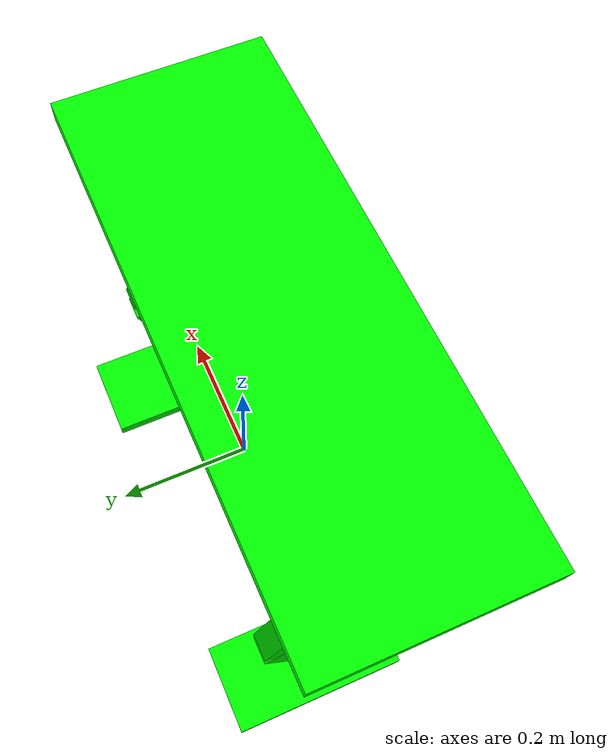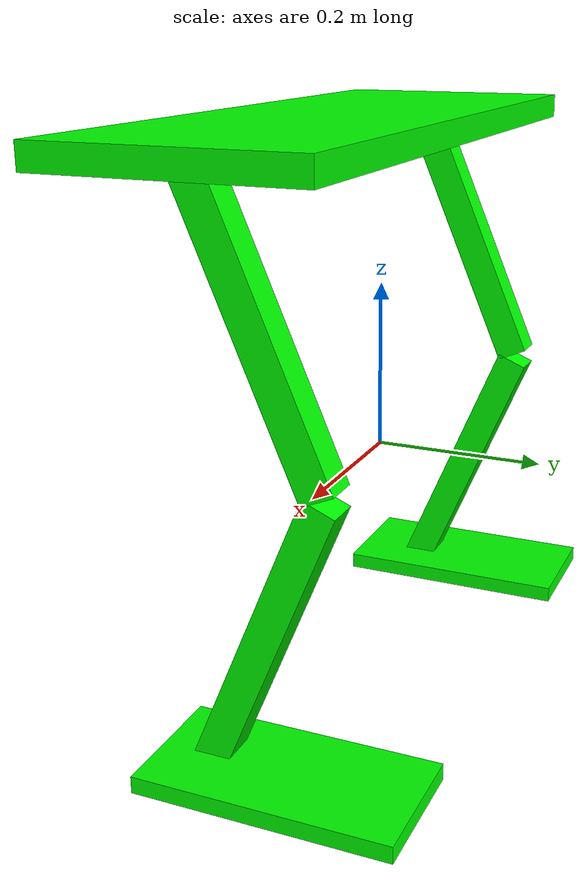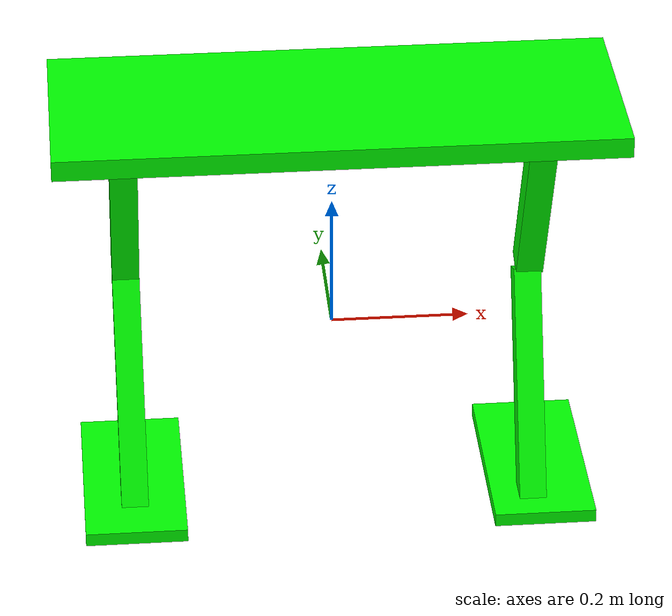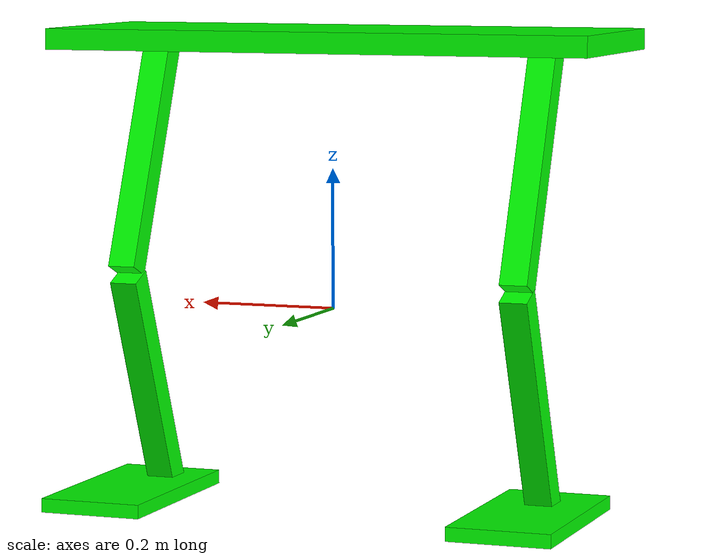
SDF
<?xml version='1.0'?>
<sdf version='1.7'>
  <model name='HumanoidRobot'>
    <link name='link_0'>
      <inertial>
        <mass>0.01</mass>
        <inertia>
          <ixx>0.00166667</ixx>
          <ixy>0</ixy>
          <ixz>0</ixz>
          <iyy>0.00166667</iyy>
          <iyz>0</iyz>
          <izz>0.00166667</izz>
        </inertia>
        <pose>0 0 0 0 -0 0</pose>
      </inertial>
      <pose>0.307131 0.017264 -0.279905 0 -0 0</pose>
      <gravity>1</gravity>
      <self_collide>0</self_collide>
      <kinematic>0</kinematic>
      <enable_wind>0</enable_wind>
      <visual name='visual'>
        <pose>0 0 0 0 -0 0</pose>
        <geometry>
          <box>
            <size>0.15 0.3 0.02</size>
          </box>
        </geometry>
        <material>
          <lighting>1</lighting>
          <script>
            <uri>file://media/materials/scripts/gazebo.material</uri>
            <name>Gazebo/Grey</name>
          </script>
          <shader type='pixel'>
            <normal_map>__default__</normal_map>
          </shader>
          <ambient>0 1 0 1</ambient>
          <diffuse>0.7 0.7 0.7 1</diffuse>
          <specular>0.01 0.01 0.01 1</specular>
          <emissive>0 0 0 1</emissive>
        </material>
        <transparency>0</transparency>
        <cast_shadows>1</cast_shadows>
      </visual>
      <collision name='collision'>
        <laser_retro>0</laser_retro>
        <max_contacts>10</max_contacts>
        <pose>0 0 0 0 -0 0</pose>
        <geometry>
          <box>
            <size>0.15 0.3 0.02</size>
          </box>
        </geometry>
        <surface>
          <friction>
            <ode>
              <mu>1</mu>
              <mu2>1</mu2>
              <fdir1>0 0 0</fdir1>
              <slip1>0</slip1>
              <slip2>0</slip2>
            </ode>
            <torsional>
              <coefficient>1</coefficient>
              <patch_radius>0</patch_radius>
              <surface_radius>0</surface_radius>
              <use_patch_radius>1</use_patch_radius>
              <ode>
                <slip>0</slip>
              </ode>
            </torsional>
          </friction>
          <bounce>
            <restitution_coefficient>0</restitution_coefficient>
            <threshold>1e+06</threshold>
          </bounce>
          <contact>
            <collide_without_contact>0</collide_without_contact>
            <collide_without_contact_bitmask>1</collide_without_contact_bitmask>
            <collide_bitmask>1</collide_bitmask>
            <ode>
              <soft_cfm>0</soft_cfm>
              <soft_erp>0.2</soft_erp>
              <kp>1e+13</kp>
              <kd>1</kd>
              <max_vel>0.01</max_vel>
              <min_depth>0</min_depth>
            </ode>
            <bullet>
              <split_impulse>1</split_impulse>
              <split_impulse_penetration_threshold>-0.01</split_impulse_penetration_threshold>
              <soft_cfm>0</soft_cfm>
              <soft_erp>0.2</soft_erp>
              <kp>1e+13</kp>
              <kd>1</kd>
            </bullet>
          </contact>
        </surface>
      </collision>
    </link>
    <link name='link_0_clone'>
      <inertial>
        <mass>0.01</mass>
        <inertia>
          <ixx>0.00166667</ixx>
          <ixy>0</ixy>
          <ixz>0</ixz>
          <iyy>0.00166667</iyy>
          <iyz>0</iyz>
          <izz>0.00166667</izz>
        </inertia>
        <pose>0 0 0 0 -0 0</pose>
      </inertial>
      <pose>-0.298802 0.017264 -0.279905 0 -0 0</pose>
      <gravity>1</gravity>
      <self_collide>0</self_collide>
      <kinematic>0</kinematic>
      <enable_wind>0</enable_wind>
      <visual name='visual'>
        <pose>0 0 0 0 -0 0</pose>
        <geometry>
          <box>
            <size>0.15 0.3 0.02</size>
          </box>
        </geometry>
        <material>
          <lighting>1</lighting>
          <script>
            <uri>file://media/materials/scripts/gazebo.material</uri>
            <name>Gazebo/Grey</name>
          </script>
          <shader type='pixel'>
            <normal_map>__default__</normal_map>
          </shader>
          <ambient>0 1 0 1</ambient>
          <diffuse>0.7 0.7 0.7 1</diffuse>
          <specular>0.01 0.01 0.01 1</specular>
          <emissive>0 0 0 1</emissive>
        </material>
        <transparency>0</transparency>
        <cast_shadows>1</cast_shadows>
      </visual>
      <collision name='collision'>
        <laser_retro>0</laser_retro>
        <max_contacts>10</max_contacts>
        <pose>0 0 0 0 -0 0</pose>
        <geometry>
          <box>
            <size>0.15 0.3 0.02</size>
          </box>
        </geometry>
        <surface>
          <friction>
            <ode>
              <mu>1</mu>
              <mu2>1</mu2>
              <fdir1>0 0 0</fdir1>
              <slip1>0</slip1>
              <slip2>0</slip2>
            </ode>
            <torsional>
              <coefficient>1</coefficient>
              <patch_radius>0</patch_radius>
              <surface_radius>0</surface_radius>
              <use_patch_radius>1</use_patch_radius>
              <ode>
                <slip>0</slip>
              </ode>
            </torsional>
          </friction>
          <bounce>
            <restitution_coefficient>0</restitution_coefficient>
            <threshold>1e+06</threshold>
          </bounce>
          <contact>
            <collide_without_contact>0</collide_without_contact>
            <collide_without_contact_bitmask>1</collide_without_contact_bitmask>
            <collide_bitmask>1</collide_bitmask>
            <ode>
              <soft_cfm>0</soft_cfm>
              <soft_erp>0.2</soft_erp>
              <kp>1e+13</kp>
              <kd>1</kd>
              <max_vel>0.01</max_vel>
              <min_depth>0</min_depth>
            </ode>
            <bullet>
              <split_impulse>1</split_impulse>
              <split_impulse_penetration_threshold>-0.01</split_impulse_penetration_threshold>
              <soft_cfm>0</soft_cfm>
              <soft_erp>0.2</soft_erp>
              <kp>1e+13</kp>
              <kd>1</kd>
            </bullet>
          </contact>
        </surface>
      </collision>
    </link>
    <link name='link_1'>
      <inertial>
        <mass>0.3</mass>
        <inertia>
          <ixx>0.05</ixx>
          <ixy>0</ixy>
          <ixz>0</ixz>
          <iyy>0.05</iyy>
          <iyz>0</iyz>
          <izz>0.05</izz>
        </inertia>
        <pose>0 0 0 0 -0 0</pose>
      </inertial>
      <pose>0.29303 -0.009452 -0.120931 0 -0 0</pose>
      <gravity>1</gravity>
      <self_collide>0</self_collide>
      <kinematic>0</kinematic>
      <enable_wind>0</enable_wind>
      <visual name='visual'>
        <pose>0 0 0 -0.4 0 0</pose>
        <geometry>
          <box>
            <size>0.04 0.04 0.35</size>
          </box>
        </geometry>
        <material>
          <lighting>1</lighting>
          <script>
            <uri>file://media/materials/scripts/gazebo.material</uri>
            <name>Gazebo/Grey</name>
          </script>
          <shader type='pixel'>
            <normal_map>__default__</normal_map>
          </shader>
          <ambient>0 1 0 1</ambient>
          <diffuse>0.7 0.7 0.7 1</diffuse>
          <specular>0.01 0.01 0.01 1</specular>
          <emissive>0 0 0 1</emissive>
        </material>
        <transparency>0</transparency>
        <cast_shadows>1</cast_shadows>
      </visual>
      <collision name='collision'>
        <laser_retro>0</laser_retro>
        <max_contacts>10</max_contacts>
        <pose>0 0 0 -0.4 0 0</pose>
        <geometry>
          <box>
            <size>0.04 0.04 0.35</size>
          </box>
        </geometry>
        <surface>
          <friction>
            <ode>
              <mu>1</mu>
              <mu2>1</mu2>
              <fdir1>0 0 0</fdir1>
              <slip1>0</slip1>
              <slip2>0</slip2>
            </ode>
            <torsional>
              <coefficient>1</coefficient>
              <patch_radius>0</patch_radius>
              <surface_radius>0</surface_radius>
              <use_patch_radius>1</use_patch_radius>
              <ode>
                <slip>0</slip>
              </ode>
            </torsional>
          </friction>
          <bounce>
            <restitution_coefficient>0</restitution_coefficient>
            <threshold>1e+06</threshold>
          </bounce>
          <contact>
            <collide_without_contact>0</collide_without_contact>
            <collide_without_contact_bitmask>1</collide_without_contact_bitmask>
            <collide_bitmask>1</collide_bitmask>
            <ode>
              <soft_cfm>0</soft_cfm>
              <soft_erp>0.2</soft_erp>
              <kp>1e+13</kp>
              <kd>1</kd>
              <max_vel>0.01</max_vel>
              <min_depth>0</min_depth>
            </ode>
            <bullet>
              <split_impulse>1</split_impulse>
              <split_impulse_penetration_threshold>-0.01</split_impulse_penetration_threshold>
              <soft_cfm>0</soft_cfm>
              <soft_erp>0.2</soft_erp>
              <kp>1e+13</kp>
              <kd>1</kd>
            </bullet>
          </contact>
        </surface>
      </collision>
    </link>
    <link name='link_1_clone'>
      <inertial>
        <mass>0.3</mass>
        <inertia>
          <ixx>0.05</ixx>
          <ixy>0</ixy>
          <ixz>0</ixz>
          <iyy>0.05</iyy>
          <iyz>0</iyz>
          <izz>0.05</izz>
        </inertia>
        <pose>0 0 0 0 -0 0</pose>
      </inertial>
      <pose>0.295816 -0.009452 0.210095 0 -0 0</pose>
      <gravity>1</gravity>
      <self_collide>0</self_collide>
      <kinematic>0</kinematic>
      <enable_wind>0</enable_wind>
      <visual name='visual'>
        <pose>0 0 0 0.4 -0 0</pose>
        <geometry>
          <box>
            <size>0.04 0.04 0.35</size>
          </box>
        </geometry>
        <material>
          <lighting>1</lighting>
          <script>
            <uri>file://media/materials/scripts/gazebo.material</uri>
            <name>Gazebo/Grey</name>
          </script>
          <shader type='pixel'>
            <normal_map>__default__</normal_map>
          </shader>
          <ambient>0 1 0 1</ambient>
          <diffuse>0.7 0.7 0.7 1</diffuse>
          <specular>0.01 0.01 0.01 1</specular>
          <emissive>0 0 0 1</emissive>
        </material>
        <transparency>0</transparency>
        <cast_shadows>1</cast_shadows>
      </visual>
      <collision name='collision'>
        <laser_retro>0</laser_retro>
        <max_contacts>10</max_contacts>
        <pose>0 0 0 0.4 -0 0</pose>
        <geometry>
          <box>
            <size>0.04 0.04 0.35</size>
          </box>
        </geometry>
        <surface>
          <friction>
            <ode>
              <mu>1</mu>
              <mu2>1</mu2>
              <fdir1>0 0 0</fdir1>
              <slip1>0</slip1>
              <slip2>0</slip2>
            </ode>
            <torsional>
              <coefficient>1</coefficient>
              <patch_radius>0</patch_radius>
              <surface_radius>0</surface_radius>
              <use_patch_radius>1</use_patch_radius>
              <ode>
                <slip>0</slip>
              </ode>
            </torsional>
          </friction>
          <bounce>
            <restitution_coefficient>0</restitution_coefficient>
            <threshold>1e+06</threshold>
          </bounce>
          <contact>
            <collide_without_contact>0</collide_without_contact>
            <collide_without_contact_bitmask>1</collide_without_contact_bitmask>
            <collide_bitmask>1</collide_bitmask>
            <ode>
              <soft_cfm>0</soft_cfm>
              <soft_erp>0.2</soft_erp>
              <kp>1e+13</kp>
              <kd>1</kd>
              <max_vel>0.01</max_vel>
              <min_depth>0</min_depth>
            </ode>
            <bullet>
              <split_impulse>1</split_impulse>
              <split_impulse_penetration_threshold>-0.01</split_impulse_penetration_threshold>
              <soft_cfm>0</soft_cfm>
              <soft_erp>0.2</soft_erp>
              <kp>1e+13</kp>
              <kd>1</kd>
            </bullet>
          </contact>
        </surface>
      </collision>
    </link>
    <link name='link_1_clone_0'>
      <inertial>
        <mass>0.3</mass>
        <inertia>
          <ixx>0.05</ixx>
          <ixy>0</ixy>
          <ixz>0</ixz>
          <iyy>0.05</iyy>
          <iyz>0</iyz>
          <izz>0.05</izz>
        </inertia>
        <pose>0 0 0 0 -0 0</pose>
      </inertial>
      <pose>-0.298802 0.017264 -0.120931 0 -0 0</pose>
      <gravity>1</gravity>
      <self_collide>0</self_collide>
      <kinematic>0</kinematic>
      <enable_wind>0</enable_wind>
      <visual name='visual'>
        <pose>0 0 0 -0.4 0 0</pose>
        <geometry>
          <box>
            <size>0.04 0.04 0.35</size>
          </box>
        </geometry>
        <material>
          <lighting>1</lighting>
          <script>
            <uri>file://media/materials/scripts/gazebo.material</uri>
            <name>Gazebo/Grey</name>
          </script>
          <shader type='pixel'>
            <normal_map>__default__</normal_map>
          </shader>
          <ambient>0 1 0 1</ambient>
          <diffuse>0.7 0.7 0.7 1</diffuse>
          <specular>0.01 0.01 0.01 1</specular>
          <emissive>0 0 0 1</emissive>
        </material>
        <transparency>0</transparency>
        <cast_shadows>1</cast_shadows>
      </visual>
      <collision name='collision'>
        <laser_retro>0</laser_retro>
        <max_contacts>10</max_contacts>
        <pose>0 0 0 -0.4 0 0</pose>
        <geometry>
          <box>
            <size>0.04 0.04 0.35</size>
          </box>
        </geometry>
        <surface>
          <friction>
            <ode>
              <mu>1</mu>
              <mu2>1</mu2>
              <fdir1>0 0 0</fdir1>
              <slip1>0</slip1>
              <slip2>0</slip2>
            </ode>
            <torsional>
              <coefficient>1</coefficient>
              <patch_radius>0</patch_radius>
              <surface_radius>0</surface_radius>
              <use_patch_radius>1</use_patch_radius>
              <ode>
                <slip>0</slip>
              </ode>
            </torsional>
          </friction>
          <bounce>
            <restitution_coefficient>0</restitution_coefficient>
            <threshold>1e+06</threshold>
          </bounce>
          <contact>
            <collide_without_contact>0</collide_without_contact>
            <collide_without_contact_bitmask>1</collide_without_contact_bitmask>
            <collide_bitmask>1</collide_bitmask>
            <ode>
              <soft_cfm>0</soft_cfm>
              <soft_erp>0.2</soft_erp>
              <kp>1e+13</kp>
              <kd>1</kd>
              <max_vel>0.01</max_vel>
              <min_depth>0</min_depth>
            </ode>
            <bullet>
              <split_impulse>1</split_impulse>
              <split_impulse_penetration_threshold>-0.01</split_impulse_penetration_threshold>
              <soft_cfm>0</soft_cfm>
              <soft_erp>0.2</soft_erp>
              <kp>1e+13</kp>
              <kd>1</kd>
            </bullet>
          </contact>
        </surface>
      </collision>
    </link>
    <link name='link_1_clone_clone'>
      <inertial>
        <mass>0.3</mass>
        <inertia>
          <ixx>0.05</ixx>
          <ixy>0</ixy>
          <ixz>0</ixz>
          <iyy>0.05</iyy>
          <iyz>0</iyz>
          <izz>0.05</izz>
        </inertia>
        <pose>0 0 0 0 -0 0</pose>
      </inertial>
      <pose>-0.298802 0.017264 0.210095 0 -0 0</pose>
      <gravity>1</gravity>
      <self_collide>0</self_collide>
      <kinematic>0</kinematic>
      <enable_wind>0</enable_wind>
      <visual name='visual'>
        <pose>0 0 0 0.4 -0 0</pose>
        <geometry>
          <box>
            <size>0.04 0.04 0.35</size>
          </box>
        </geometry>
        <material>
          <lighting>1</lighting>
          <script>
            <uri>file://media/materials/scripts/gazebo.material</uri>
            <name>Gazebo/Grey</name>
          </script>
          <shader type='pixel'>
            <normal_map>__default__</normal_map>
          </shader>
          <ambient>0 1 0 1</ambient>
          <diffuse>0.7 0.7 0.7 1</diffuse>
          <specular>0.01 0.01 0.01 1</specular>
          <emissive>0 0 0 1</emissive>
        </material>
        <transparency>0</transparency>
        <cast_shadows>1</cast_shadows>
      </visual>
      <collision name='collision'>
        <laser_retro>0</laser_retro>
        <max_contacts>10</max_contacts>
        <pose>0 0 0 0.4 -0 0</pose>
        <geometry>
          <box>
            <size>0.04 0.04 0.35</size>
          </box>
        </geometry>
        <surface>
          <friction>
            <ode>
              <mu>1</mu>
              <mu2>1</mu2>
              <fdir1>0 0 0</fdir1>
              <slip1>0</slip1>
              <slip2>0</slip2>
            </ode>
            <torsional>
              <coefficient>1</coefficient>
              <patch_radius>0</patch_radius>
              <surface_radius>0</surface_radius>
              <use_patch_radius>1</use_patch_radius>
              <ode>
                <slip>0</slip>
              </ode>
            </torsional>
          </friction>
          <bounce>
            <restitution_coefficient>0</restitution_coefficient>
            <threshold>1e+06</threshold>
          </bounce>
          <contact>
            <collide_without_contact>0</collide_without_contact>
            <collide_without_contact_bitmask>1</collide_without_contact_bitmask>
            <collide_bitmask>1</collide_bitmask>
            <ode>
              <soft_cfm>0</soft_cfm>
              <soft_erp>0.2</soft_erp>
              <kp>1e+13</kp>
              <kd>1</kd>
              <max_vel>0.01</max_vel>
              <min_depth>0</min_depth>
            </ode>
            <bullet>
              <split_impulse>1</split_impulse>
              <split_impulse_penetration_threshold>-0.01</split_impulse_penetration_threshold>
              <soft_cfm>0</soft_cfm>
              <soft_erp>0.2</soft_erp>
              <kp>1e+13</kp>
              <kd>1</kd>
            </bullet>
          </contact>
        </surface>
      </collision>
    </link>
    <link name='link_2'>
      <inertial>
        <mass>0.1</mass>
        <inertia>
          <ixx>0.0166667</ixx>
          <ixy>0</ixy>
          <ixz>0</ixz>
          <iyy>0.0166667</iyy>
          <iyz>0</iyz>
          <izz>0.0166667</izz>
        </inertia>
        <pose>0 0 0 0 -0 0</pose>
      </inertial>
      <pose>0.000431 -0.050152 0.381484 0 -0 0</pose>
      <gravity>1</gravity>
      <self_collide>0</self_collide>
      <kinematic>0</kinematic>
      <enable_wind>0</enable_wind>
      <visual name='visual'>
        <pose>0 0 0 0 -0 0</pose>
        <geometry>
          <box>
            <size>0.8 0.3 0.03</size>
          </box>
        </geometry>
        <material>
          <lighting>1</lighting>
          <script>
            <uri>file://media/materials/scripts/gazebo.material</uri>
            <name>Gazebo/Grey</name>
          </script>
          <shader type='pixel'>
            <normal_map>__default__</normal_map>
          </shader>
          <ambient>0 1 0 1</ambient>
          <diffuse>0.7 0.7 0.7 1</diffuse>
          <specular>0.01 0.01 0.01 1</specular>
          <emissive>0 0 0 1</emissive>
        </material>
        <transparency>0</transparency>
        <cast_shadows>1</cast_shadows>
      </visual>
      <collision name='collision'>
        <laser_retro>0</laser_retro>
        <max_contacts>10</max_contacts>
        <pose>0 0 0 0 -0 0</pose>
        <geometry>
          <box>
            <size>0.8 0.3 0.03</size>
          </box>
        </geometry>
        <surface>
          <friction>
            <ode>
              <mu>1</mu>
              <mu2>1</mu2>
              <fdir1>0 0 0</fdir1>
              <slip1>0</slip1>
              <slip2>0</slip2>
            </ode>
            <torsional>
              <coefficient>1</coefficient>
              <patch_radius>0</patch_radius>
              <surface_radius>0</surface_radius>
              <use_patch_radius>1</use_patch_radius>
              <ode>
                <slip>0</slip>
              </ode>
            </torsional>
          </friction>
          <bounce>
            <restitution_coefficient>0</restitution_coefficient>
            <threshold>1e+06</threshold>
          </bounce>
          <contact>
            <collide_without_contact>0</collide_without_contact>
            <collide_without_contact_bitmask>1</collide_without_contact_bitmask>
            <collide_bitmask>1</collide_bitmask>
            <ode>
              <soft_cfm>0</soft_cfm>
              <soft_erp>0.2</soft_erp>
              <kp>1e+13</kp>
              <kd>1</kd>
              <max_vel>0.01</max_vel>
              <min_depth>0</min_depth>
            </ode>
            <bullet>
              <split_impulse>1</split_impulse>
              <split_impulse_penetration_threshold>-0.01</split_impulse_penetration_threshold>
              <soft_cfm>0</soft_cfm>
              <soft_erp>0.2</soft_erp>
              <kp>1e+13</kp>
              <kd>1</kd>
            </bullet>
          </contact>
        </surface>
      </collision>
    </link>
    <joint name='link_0_JOINT_0' type='revolute'>
      <parent>link_0</parent>
      <child>link_1</child>
      <pose>0 0 0 0 -0 0</pose>
      <axis>
        <xyz>1 0 0</xyz>
        <limit>
          <lower>-1.79769e+308</lower>
          <upper>1.79769e+308</upper>
          <effort>-1</effort>
          <velocity>-1</velocity>
        </limit>
        <dynamics>
          <spring_reference>0</spring_reference>
          <spring_stiffness>0</spring_stiffness>
          <damping>0</damping>
        </dynamics>
      </axis>
      <physics>
        <ode>
          <limit>
            <cfm>0</cfm>
            <erp>0.2</erp>
          </limit>
          <suspension>
            <cfm>0</cfm>
            <erp>0.2</erp>
          </suspension>
        </ode>
      </physics>
    </joint>
    <joint name='link_0_clone_JOINT_2' type='revolute'>
      <parent>link_0_clone</parent>
      <child>link_1_clone_0</child>
      <pose>0 0 0 0 -0 0</pose>
      <axis>
        <xyz>1 0 0</xyz>
        <limit>
          <lower>-1.79769e+308</lower>
          <upper>1.79769e+308</upper>
          <effort>-1</effort>
          <velocity>-1</velocity>
        </limit>
        <dynamics>
          <spring_reference>0</spring_reference>
          <spring_stiffness>0</spring_stiffness>
          <damping>0</damping>
        </dynamics>
      </axis>
      <physics>
        <ode>
          <limit>
            <cfm>0</cfm>
            <erp>0.2</erp>
          </limit>
          <suspension>
            <cfm>0</cfm>
            <erp>0.2</erp>
          </suspension>
        </ode>
      </physics>
    </joint>
    <joint name='link_1_JOINT_1' type='revolute'>
      <parent>link_1</parent>
      <child>link_1_clone</child>
      <pose>0 0 0 0 -0 0</pose>
      <axis>
        <xyz>1 0 0</xyz>
        <limit>
          <lower>-1.79769e+308</lower>
          <upper>1.79769e+308</upper>
          <effort>-1</effort>
          <velocity>-1</velocity>
        </limit>
        <dynamics>
          <spring_reference>0</spring_reference>
          <spring_stiffness>0</spring_stiffness>
          <damping>0</damping>
        </dynamics>
      </axis>
      <physics>
        <ode>
          <limit>
            <cfm>0</cfm>
            <erp>0.2</erp>
          </limit>
          <suspension>
            <cfm>0</cfm>
            <erp>0.2</erp>
          </suspension>
        </ode>
      </physics>
    </joint>
    <joint name='link_1_clone_0_JOINT_3' type='revolute'>
      <parent>link_1_clone_0</parent>
      <child>link_1_clone_clone</child>
      <pose>0 0 0 0 -0 0</pose>
      <axis>
        <xyz>1 0 0</xyz>
        <limit>
          <lower>-1.79769e+308</lower>
          <upper>1.79769e+308</upper>
          <effort>-1</effort>
          <velocity>-1</velocity>
        </limit>
        <dynamics>
          <spring_reference>0</spring_reference>
          <spring_stiffness>0</spring_stiffness>
          <damping>0</damping>
        </dynamics>
      </axis>
      <physics>
        <ode>
          <limit>
            <cfm>0</cfm>
            <erp>0.2</erp>
          </limit>
          <suspension>
            <cfm>0</cfm>
            <erp>0.2</erp>
          </suspension>
        </ode>
      </physics>
    </joint>
    <joint name='link_1_clone_JOINT_5' type='revolute'>
      <parent>link_1_clone</parent>
      <child>link_2</child>
      <pose>0 0 0 0 -0 0</pose>
      <axis>
        <xyz>1 0 0</xyz>
        <limit>
          <lower>-1.79769e+308</lower>
          <upper>1.79769e+308</upper>
          <effort>-1</effort>
          <velocity>-1</velocity>
        </limit>
        <dynamics>
          <spring_reference>0</spring_reference>
          <spring_stiffness>0</spring_stiffness>
          <damping>0</damping>
        </dynamics>
      </axis>
      <physics>
        <ode>
          <limit>
            <cfm>0</cfm>
            <erp>0.2</erp>
          </limit>
          <suspension>
            <cfm>0</cfm>
            <erp>0.2</erp>
          </suspension>
        </ode>
      </physics>
    </joint>
    <joint name='link_1_clone_clone_JOINT_4' type='revolute'>
      <parent>link_1_clone_clone</parent>
      <child>link_2</child>
      <pose>0 0 0 0 -0 0</pose>
      <axis>
        <xyz>1 0 0</xyz>
        <limit>
          <lower>-1.79769e+308</lower>
          <upper>1.79769e+308</upper>
          <effort>-1</effort>
          <velocity>-1</velocity>
        </limit>
        <dynamics>
          <spring_reference>0</spring_reference>
          <spring_stiffness>0</spring_stiffness>
          <damping>0</damping>
        </dynamics>
      </axis>
      <physics>
        <ode>
          <limit>
            <cfm>0</cfm>
            <erp>0.2</erp>
          </limit>
          <suspension>
            <cfm>0</cfm>
            <erp>0.2</erp>
          </suspension>
        </ode>
      </physics>
    </joint>
    <static>1</static>
    <allow_auto_disable>1</allow_auto_disable>
  </model>
</sdf>
